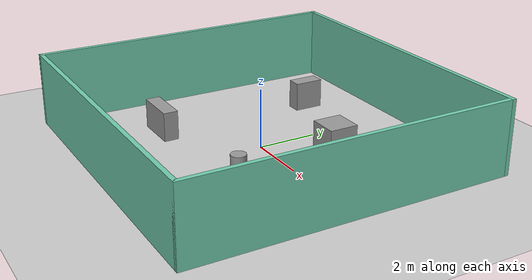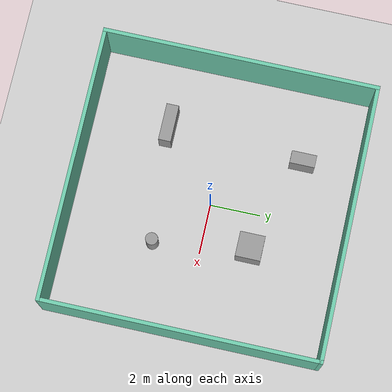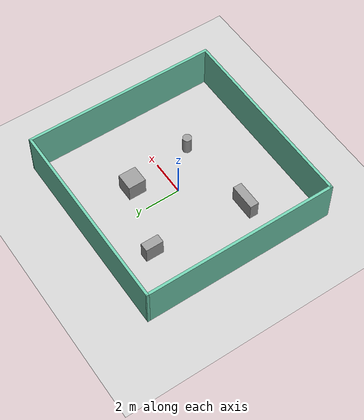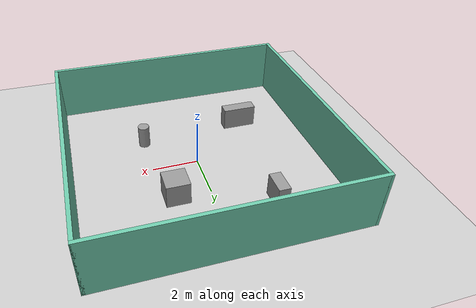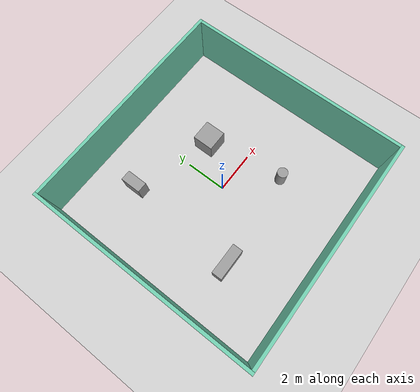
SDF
<sdf version="1.7">
 <world name="default">
  <light name="sun" type="directional">
   <pose>0 0 10 0 -0 0</pose>
   <diffuse>0.8 0.8 0.8 1</diffuse>
   <specular>0.1 0.1 0.1 1</specular>
   <attenuation>
    <range>1000</range>
    <constant>0.9</constant>
    <linear>0.01</linear>
    <quadratic>0.001</quadratic>
   </attenuation>
   <direction>-0.5 0.5 -1</direction>
   <spot><inner_angle>0</inner_angle><outer_angle>0</outer_angle><falloff>0</falloff></spot>
  </light>
  <model name="ground_plane">
   <static>1</static>
   <link name="link">
    <collision name="collision">
     <geometry><plane><normal>0 0 1</normal><size>100 100</size></plane></geometry>
     <surface><friction><ode><mu>100</mu><mu2>50</mu2></ode></friction></surface>
    </collision>
    <visual name="visual">
     <cast_shadows>0</cast_shadows>
     <geometry><plane><normal>0 0 1</normal><size>100 100</size></plane></geometry>
     <material>
      <script><uri>file://media/materials/scripts/gazebo.material</uri><name>Gazebo/Grey</name></script>
     </material>
    </visual>
   </link>
  </model>
  <gravity>0 0 -9.8</gravity>
  <magnetic_field>6e-06 2.3e-05 -4.2e-05</magnetic_field>
  <atmosphere type="adiabatic"/>
  <physics name="default_physics" default="0" type="ode">
   <max_step_size>0.001</max_step_size>
   <real_time_factor>1</real_time_factor>
   <real_time_update_rate>1000</real_time_update_rate>
  </physics>
  <scene><ambient>0.4 0.4 0.4 1</ambient><background>0.7 0.7 0.7 1</background><shadows>1</shadows></scene>
  <spherical_coordinates>
   <surface_model>EARTH_WGS84</surface_model>
   <latitude_deg>0</latitude_deg>
   <longitude_deg>0</longitude_deg>
   <elevation>0</elevation>
   <heading_deg>0</heading_deg>
  </spherical_coordinates>
  <model name="akm_block">
   <link name="Wall_11">
    <collision name="Wall_11_Collision">
     <geometry><box><size>11 0.15 2.5</size></box></geometry>
     <pose>0 0 1.25 0 -0 0</pose>
    </collision>
    <visual name="Wall_11_Visual">
     <pose>0 0 1.25 0 -0 0</pose>
     <geometry><box><size>11 0.15 2.5</size></box></geometry>
     <material>
      <script><uri>file://media/materials/scripts/gazebo.material</uri><name>Gazebo/Grey</name></script>
      <ambient>0.435294 0.796078 0.67451 1</ambient>
     </material>
     <meta><layer>0</layer></meta>
    </visual>
    <pose>-5.425 0 0 0 -0 -1.5708</pose>
   </link>
   <link name="Wall_5">
    <collision name="Wall_5_Collision">
     <geometry><box><size>11 0.15 2.5</size></box></geometry>
     <pose>0 0 1.25 0 -0 0</pose>
    </collision>
    <visual name="Wall_5_Visual">
     <pose>0 0 1.25 0 -0 0</pose>
     <geometry><box><size>11 0.15 2.5</size></box></geometry>
     <material>
      <script><uri>file://media/materials/scripts/gazebo.material</uri><name>Gazebo/Grey</name></script>
      <ambient>0.435294 0.796078 0.67451 1</ambient>
     </material>
     <meta><layer>0</layer></meta>
    </visual>
    <pose>0 5.425 0 0 -0 0</pose>
   </link>
   <link name="Wall_7">
    <collision name="Wall_7_Collision">
     <geometry><box><size>11 0.15 2.5</size></box></geometry>
     <pose>0 0 1.25 0 -0 0</pose>
    </collision>
    <visual name="Wall_7_Visual">
     <pose>0 0 1.25 0 -0 0</pose>
     <geometry><box><size>11 0.15 2.5</size></box></geometry>
     <material>
      <script><uri>file://media/materials/scripts/gazebo.material</uri><name>Gazebo/Grey</name></script>
      <ambient>0.435294 0.796078 0.67451 1</ambient>
     </material>
     <meta><layer>0</layer></meta>
    </visual>
    <pose>5.425 0 0 0 -0 1.5708</pose>
   </link>
   <link name="Wall_9">
    <collision name="Wall_9_Collision">
     <geometry><box><size>11 0.15 2.5</size></box></geometry>
     <pose>0 0 1.25 0 -0 0</pose>
    </collision>
    <visual name="Wall_9_Visual">
     <pose>0 0 1.25 0 -0 0</pose>
     <geometry><box><size>11 0.15 2.5</size></box></geometry>
     <material>
      <script><uri>file://media/materials/scripts/gazebo.material</uri><name>Gazebo/Grey</name></script>
      <ambient>0.435294 0.796078 0.67451 1</ambient>
     </material>
     <meta><layer>0</layer></meta>
    </visual>
    <pose>0 -5.425 0 0 -0 0</pose>
   </link>
   <static>1</static>
  </model>
  <model name="unit_cylinder">
   <pose>2 -1.9 0.49999 0 -1e-06 1e-06</pose>
   <link name="link">
    <inertial>
     <mass>1</mass>
     <inertia><ixx>0.145833</ixx><ixy>0</ixy><ixz>0</ixz><iyy>0.145833</iyy><iyz>0</iyz><izz>0.125</izz></inertia>
    </inertial>
    <collision name="collision">
     <geometry><cylinder><radius>0.250001</radius><length>1</length></cylinder></geometry>
    </collision>
    <visual name="visual">
     <geometry><cylinder><radius>0.250001</radius><length>1</length></cylinder></geometry>
     <material>
      <script><name>Gazebo/Grey</name><uri>file://media/materials/scripts/gazebo.material</uri></script>
     </material>
    </visual>
   </link>
  </model>
  <model name="unit_box_0">
   <pose>1.44999 1.9 0.499995 0 -1e-05 0</pose>
   <link name="link">
    <inertial>
     <mass>1</mass>
     <inertia>
      <ixx>0.166667</ixx>
      <ixy>0</ixy>
      <ixz>0</ixz>
      <iyy>0.166667</iyy>
      <iyz>0</iyz>
      <izz>0.166667</izz>
     </inertia>
    </inertial>
    <collision name="collision"><geometry><box><size>1 1 1</size></box></geometry></collision>
    <visual name="visual">
     <geometry><box><size>1 1 1</size></box></geometry>
     <material>
      <script><name>Gazebo/Grey</name><uri>file://media/materials/scripts/gazebo.material</uri></script>
     </material>
    </visual>
   </link>
  </model>
  <model name="unit_box_1">
   <pose>-2.69993 -2.30001 0.5 -0 -0 -0</pose>
   <link name="link">
    <inertial>
     <mass>1</mass>
     <inertia>
      <ixx>0.166667</ixx>
      <ixy>0</ixy>
      <ixz>0</ixz>
      <iyy>0.166667</iyy>
      <iyz>0</iyz>
      <izz>0.166667</izz>
     </inertia>
    </inertial>
    <collision name="collision"><geometry><box><size>1.5 0.5 1</size></box></geometry></collision>
    <visual name="visual">
     <geometry><box><size>1.5 0.5 1</size></box></geometry>
     <material>
      <script><name>Gazebo/Grey</name><uri>file://media/materials/scripts/gazebo.material</uri></script>
     </material>
    </visual>
   </link>
  </model>
  <model name="unit_box_2">
   <pose>-2.4 3.2 0.5 0 -0 0</pose>
   <link name="link">
    <inertial>
     <mass>1</mass>
     <inertia>
      <ixx>0.166667</ixx>
      <ixy>0</ixy>
      <ixz>0</ixz>
      <iyy>0.166667</iyy>
      <iyz>0</iyz>
      <izz>0.166667</izz>
     </inertia>
    </inertial>
    <collision name="collision"><geometry><box><size>0.5 1 1</size></box></geometry></collision>
    <visual name="visual">
     <geometry><box><size>0.5 1 1</size></box></geometry>
     <material>
      <script><name>Gazebo/Grey</name><uri>file://media/materials/scripts/gazebo.material</uri></script>
     </material>
    </visual>
   </link>
  </model>
 </world>
</sdf>
